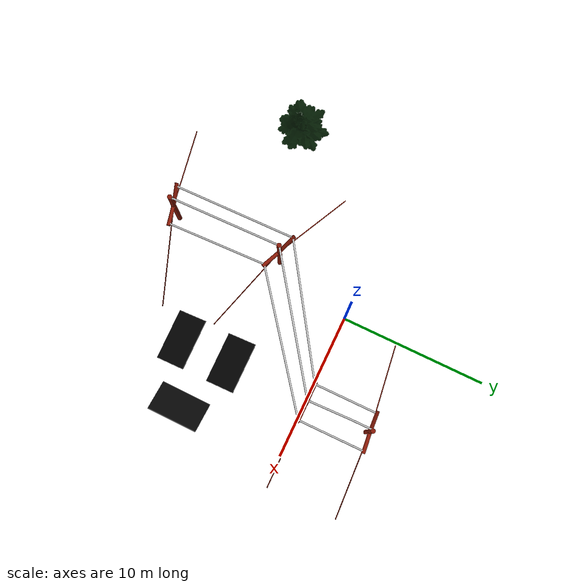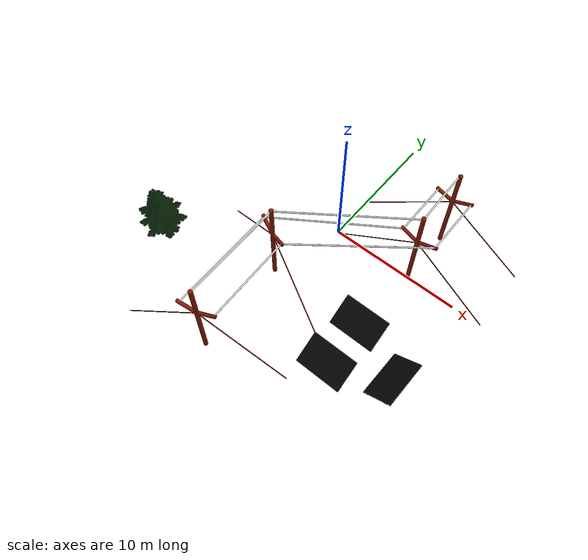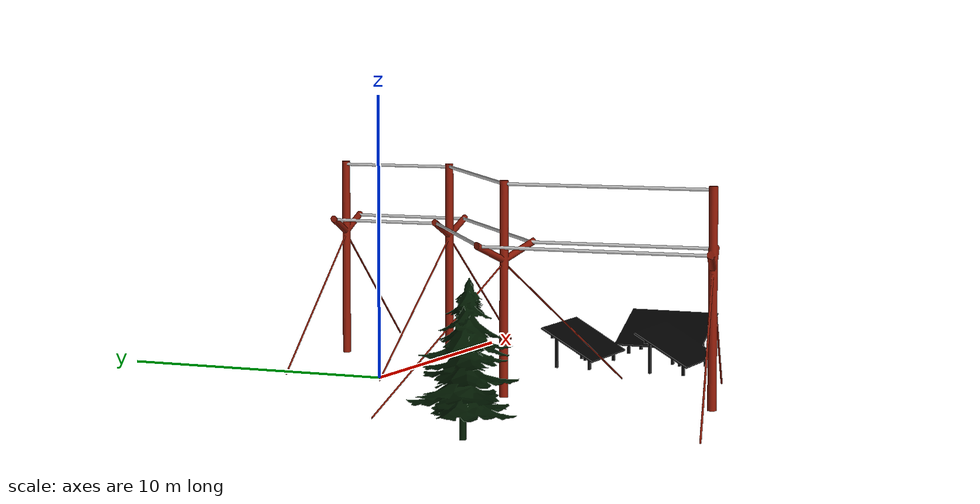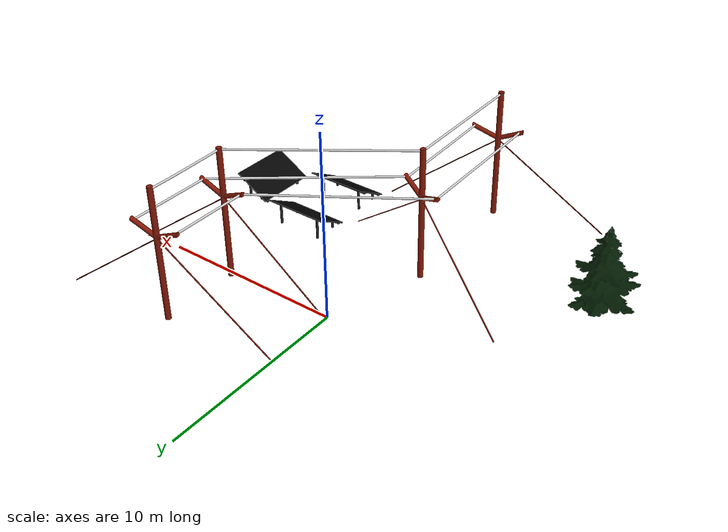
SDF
<?xml version="1.0" ?>
<sdf version="1.6">
  <model name="four_towers">
    <static>true</static>
    <link name="link">
      <collision name="collision">
        <geometry>
          <mesh>
            <scale>1 1 1</scale>
            <uri>model://four_towers/meshes/four_towers.dae</uri>
          </mesh>
        </geometry>
      </collision>
      <visual name="visual">
        <geometry>
          <mesh>
            <scale>1 1 1</scale>
            <uri>model://four_towers/meshes/four_towers.dae</uri>
          </mesh>
        </geometry>
      </visual>
    </link>
  </model>
</sdf>
